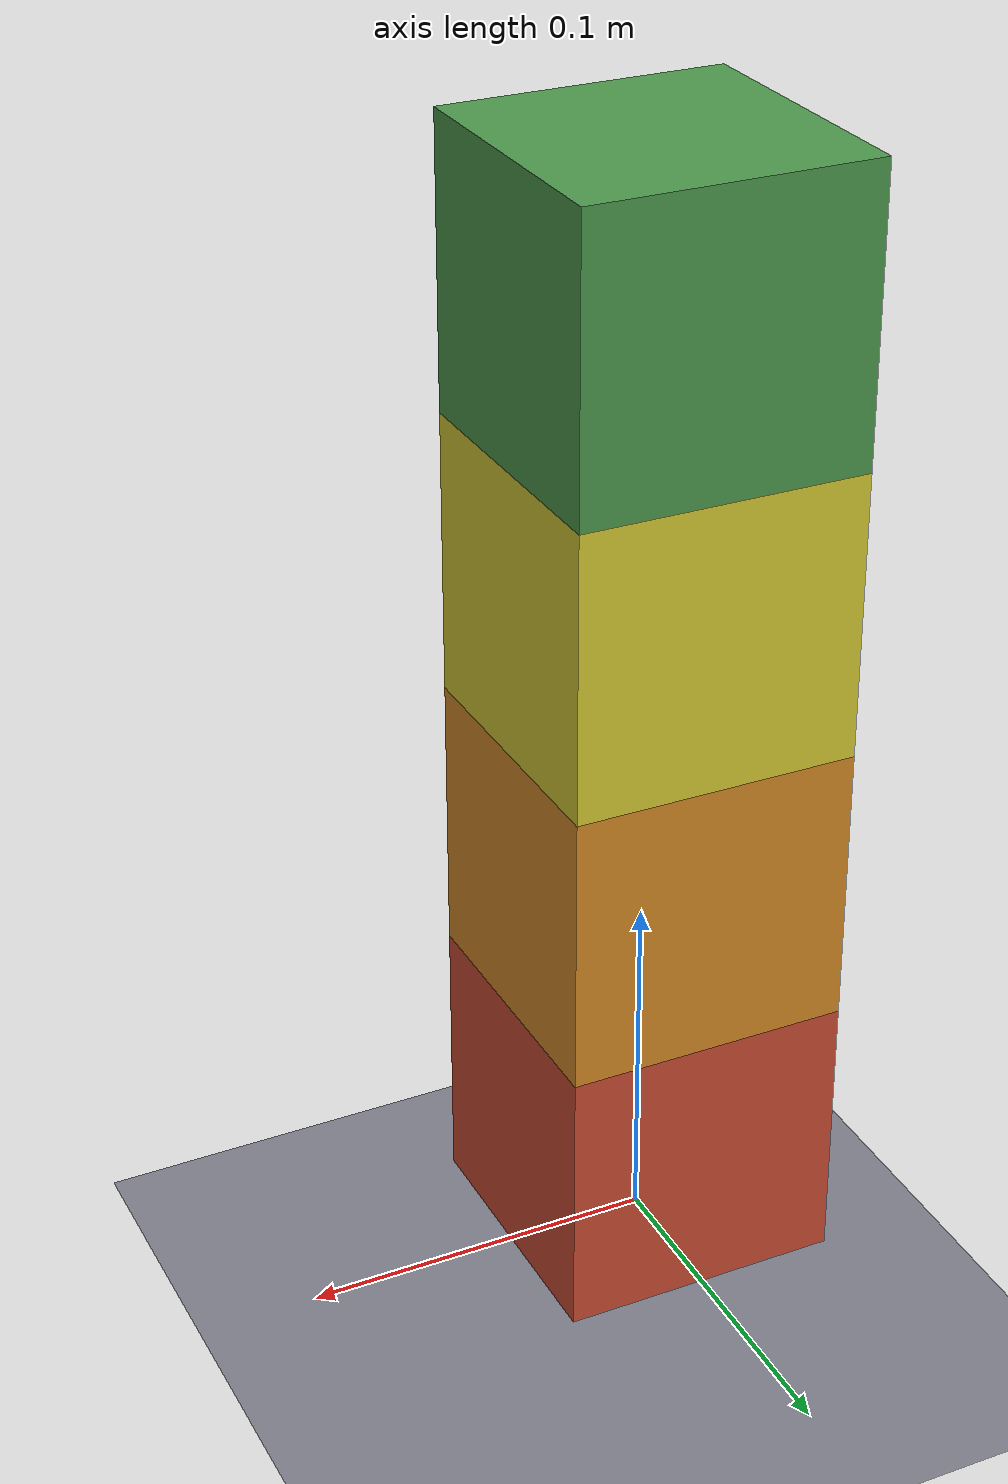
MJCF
<mujoco model="blocks">
  <option timestep="0.002" integrator="Euler" solver="Newton" tolerance="0" iterations="30"/>

  <default>
    <geom friction="0.8 0.005 0.0001" solref="0.004 1" solimp="0.95 0.99 0.001"/>
  </default>

  <worldbody>
    <light pos="0 0 2" dir="0 0 -1" diffuse="0.9 0.9 0.9"/>
    <geom name="floor" type="plane" size="1 1 0.02" rgba="0.5 0.5 0.55 1"/>

    <body name="block_0" pos="0 0 0.04">
      <freejoint name="block_0_free"/>
      <geom name="block_0_geom" type="box" size="0.04 0.04 0.04" mass="0.5" rgba="0.8 0.3 0.2 1"/>
    </body>
    <body name="block_1" pos="0 0 0.12">
      <freejoint name="block_1_free"/>
      <geom name="block_1_geom" type="box" size="0.04 0.04 0.04" mass="0.5" rgba="0.85 0.55 0.15 1"/>
    </body>
    <body name="block_2" pos="0 0 0.20">
      <freejoint name="block_2_free"/>
      <geom name="block_2_geom" type="box" size="0.04 0.04 0.04" mass="0.5" rgba="0.85 0.8 0.2 1"/>
    </body>
    <body name="block_3" pos="0 0 0.28">
      <freejoint name="block_3_free"/>
      <geom name="block_3_geom" type="box" size="0.04 0.04 0.04" mass="0.5" rgba="0.3 0.6 0.3 1"/>
    </body>
  </worldbody>

  <sensor>
    <framepos name="block_0.pos" objtype="body" objname="block_0"/>
    <framelinvel name="block_0.vel" objtype="body" objname="block_0"/>
    <framepos name="block_1.pos" objtype="body" objname="block_1"/>
    <framelinvel name="block_1.vel" objtype="body" objname="block_1"/>
    <framepos name="block_2.pos" objtype="body" objname="block_2"/>
    <framelinvel name="block_2.vel" objtype="body" objname="block_2"/>
    <framepos name="block_3.pos" objtype="body" objname="block_3"/>
    <framelinvel name="block_3.vel" objtype="body" objname="block_3"/>
  </sensor>
</mujoco>
